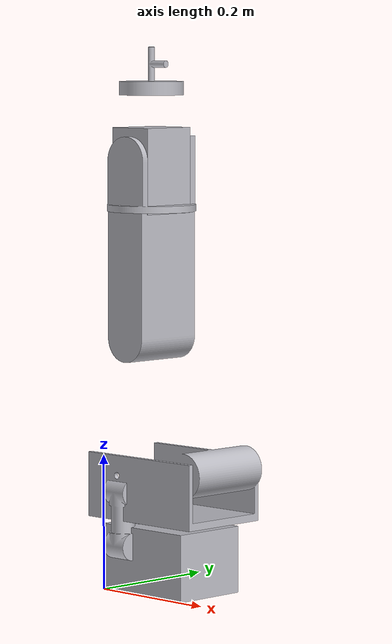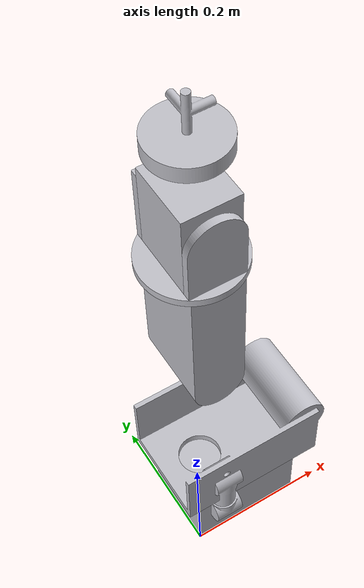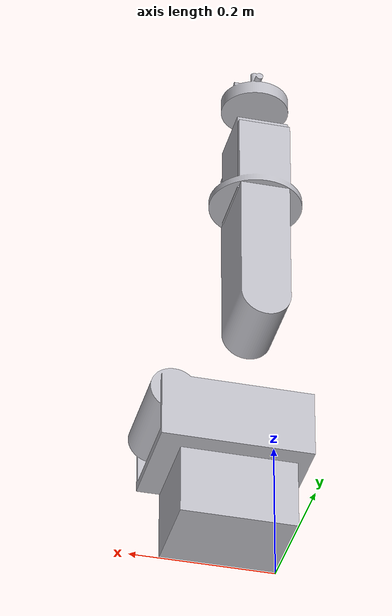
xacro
<?xml version="1.0"?>
<robot xmlns:xacro="http://www.ros.org/wiki/xacro" name="URDF">
    <xacro:arg name="initial_positions_file" default="initial_positions.yaml" />

    <!-- Import URDF urdf file -->
    <xacro:include filename="$(find six_dof)/urdf/URDF.xacro" />

    <!-- Import control_xacro -->
    <xacro:include filename="URDF.ros2_control.xacro" />

    <xacro:URDF_ros2_control name="FakeSystem" initial_positions_file="$(arg initial_positions_file)"/>

</robot>

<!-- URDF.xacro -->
<robot name="URDF" xmlns:xacro="http://www.ros.org/wiki/xacro">

<link name="world"/>

  <joint name="world_fixed_joint" type="fixed">
    <parent link="world"/>
    <child link="base_link"/>
  </joint>

<xacro:include filename="$(find six_dof)/urdf/materials.xacro" />
<xacro:include filename="$(find six_dof)/urdf/URDF.trans" />
<xacro:include filename="$(find six_dof)/urdf/URDF.gazebo" />

<link name="base_link">
  <inertial>
    <origin xyz="0.07901405555218022 0.0600975 0.05010159170370789" rpy="0 0 0"/>
    <mass value="15.035180794978768"/>
    <inertia ixx="0.030531" iyy="0.044355" izz="0.049591" ixy="-0.0" iyz="0.0" ixz="0.000482"/>
  </inertial>
  <visual>
    <origin xyz="0 0 0" rpy="0 0 0"/>
    <geometry>
      <mesh filename="package://six_dof/meshes/base_link.stl" scale="0.001 0.001 0.001"/>
    </geometry>
    <material name="silver"/>
  </visual>
  <collision>
    <origin xyz="0 0 0" rpy="0 0 0"/>
    <geometry>
      <mesh filename="package://six_dof/meshes/base_link.stl" scale="0.001 0.001 0.001"/>
    </geometry>
  </collision>
</link>

<link name="second_link_1">
  <inertial>
    <origin xyz="0.0838249114367144 3.9109956953969904e-05 0.04934459011597467" rpy="0 0 0"/>
    <mass value="7.693542380525855"/>
    <inertia ixx="0.02764" iyy="0.039205" izz="0.04824" ixy="2.5e-05" iyz="-5e-06" ixz="-0.007677"/>
  </inertial>
  <visual>
    <origin xyz="-0.039007 -0.060098 -0.1086" rpy="0 0 0"/>
    <geometry>
      <mesh filename="package://six_dof/meshes/second_link_1.stl" scale="0.001 0.001 0.001"/>
    </geometry>
    <material name="silver"/>
  </visual>
  <collision>
    <origin xyz="-0.039007 -0.060098 -0.1086" rpy="0 0 0"/>
    <geometry>
      <mesh filename="package://six_dof/meshes/second_link_1.stl" scale="0.001 0.001 0.001"/>
    </geometry>
  </collision>
</link>

<link name="third_link_1">
  <inertial>
    <origin xyz="6.885726072687615e-05 0.0650005 0.026866917148229447" rpy="0 0 0"/>
    <mass value="9.06233395752304"/>
    <inertia ixx="0.062086" iyy="0.049605" izz="0.024949" ixy="-0.0" iyz="0.0" ixz="-1.3e-05"/>
  </inertial>
  <visual>
    <origin xyz="-0.039199 0.004903 -0.1746" rpy="0 0 0"/>
    <geometry>
      <mesh filename="package://six_dof/meshes/third_link_1.stl" scale="0.001 0.001 0.001"/>
    </geometry>
    <material name="silver"/>
  </visual>
  <collision>
    <origin xyz="-0.039199 0.004903 -0.1746" rpy="0 0 0"/>
    <geometry>
      <mesh filename="package://six_dof/meshes/third_link_1.stl" scale="0.001 0.001 0.001"/>
    </geometry>
  </collision>
</link>

<link name="fourth_link_1">
  <inertial>
    <origin xyz="-3.469446951953614e-17 0.054999500000000034 0.07861193624106466" rpy="0 0 0"/>
    <mass value="12.843893719529557"/>
    <inertia ixx="0.061658" iyy="0.053782" izz="0.018026" ixy="0.0" iyz="0.0" ixz="0.0"/>
  </inertial>
  <visual>
    <origin xyz="-0.039199 -0.005098 -0.3746" rpy="0 0 0"/>
    <geometry>
      <mesh filename="package://six_dof/meshes/fourth_link_1.stl" scale="0.001 0.001 0.001"/>
    </geometry>
    <material name="silver"/>
  </visual>
  <collision>
    <origin xyz="-0.039199 -0.005098 -0.3746" rpy="0 0 0"/>
    <geometry>
      <mesh filename="package://six_dof/meshes/fourth_link_1.stl" scale="0.001 0.001 0.001"/>
    </geometry>
  </collision>
</link>

<link name="fifth_link_1">
  <inertial>
    <origin xyz="1.5265566588595902e-16 -4.999999999866223e-07 0.03379692584169203" rpy="0 0 0"/>
    <mass value="2.1999808629204853"/>
    <inertia ixx="0.006505" iyy="0.004259" izz="0.005507" ixy="0.0" iyz="0.0" ixz="-0.0"/>
  </inertial>
  <visual>
    <origin xyz="-0.039199 -0.060098 -0.5596" rpy="0 0 0"/>
    <geometry>
      <mesh filename="package://six_dof/meshes/fifth_link_1.stl" scale="0.001 0.001 0.001"/>
    </geometry>
    <material name="silver"/>
  </visual>
  <collision>
    <origin xyz="-0.039199 -0.060098 -0.5596" rpy="0 0 0"/>
    <geometry>
      <mesh filename="package://six_dof/meshes/fifth_link_1.stl" scale="0.001 0.001 0.001"/>
    </geometry>
  </collision>
</link>

<link name="sixth_link_1">
  <inertial>
    <origin xyz="1.8041124150158794e-16 0.04389135984099561 1.1102230246251565e-16" rpy="0 0 0"/>
    <mass value="6.343316113849922"/>
    <inertia ixx="0.012395" iyy="0.011167" izz="0.006919" ixy="0.0" iyz="0.0" ixz="0.0"/>
  </inertial>
  <visual>
    <origin xyz="-0.039199 -0.016206 -0.6196" rpy="0 0 0"/>
    <geometry>
      <mesh filename="package://six_dof/meshes/sixth_link_1.stl" scale="0.001 0.001 0.001"/>
    </geometry>
    <material name="silver"/>
  </visual>
  <collision>
    <origin xyz="-0.039199 -0.016206 -0.6196" rpy="0 0 0"/>
    <geometry>
      <mesh filename="package://six_dof/meshes/sixth_link_1.stl" scale="0.001 0.001 0.001"/>
    </geometry>
  </collision>
</link>

<link name="seventh_link_1">
  <inertial>
    <origin xyz="0.00023086583236890668 0.00023122567335883554 0.011861119443778878" rpy="0 0 0"/>
    <mass value="1.174052381754155"/>
    <inertia ixx="0.000748" iyy="0.000748" izz="0.001264" ixy="0.0" iyz="-9e-06" ixz="-9e-06"/>
  </inertial>
  <visual>
    <origin xyz="-0.039199 -0.060097 -0.682334" rpy="0 0 0"/>
    <geometry>
      <mesh filename="package://six_dof/meshes/seventh_link_1.stl" scale="0.001 0.001 0.001"/>
    </geometry>
    <material name="silver"/>
  </visual>
  <collision>
    <origin xyz="-0.039199 -0.060097 -0.682334" rpy="0 0 0"/>
    <geometry>
      <mesh filename="package://six_dof/meshes/seventh_link_1.stl" scale="0.001 0.001 0.001"/>
    </geometry>
  </collision>
</link>

<joint name="Revolute 7" type="revolute">
  <origin xyz="0.039007 0.060098 0.1086" rpy="0 0 0"/>
  <parent link="base_link"/>
  <child link="second_link_1"/>
  <axis xyz="0.0 0.0 1.0"/>
  <limit upper="2.879793" lower="-2.879793" effort="100.0" velocity="100.0"/>
</joint>

<joint name="Revolute 8" type="revolute">
  <origin xyz="0.000192 -0.065001 0.066" rpy="0 0 0"/>
  <parent link="second_link_1"/>
  <child link="third_link_1"/>
  <axis xyz="0.0 -1.0 0.0"/>
  <limit upper="1.308997" lower="-0.785398" effort="100.0" velocity="100.0"/>
</joint>

<joint name="Revolute 10" type="revolute">
  <origin xyz="0.0 0.010001 0.2" rpy="0 0 0"/>
  <parent link="third_link_1"/>
  <child link="fourth_link_1"/>
  <axis xyz="0.0 1.0 0.0"/>
  <limit upper="2.268928" lower="-2.268928" effort="100.0" velocity="100.0"/>
</joint>

<joint name="Revolute 11" type="continuous">
  <origin xyz="0.0 0.055 0.185" rpy="0 0 0"/>
  <parent link="fourth_link_1"/>
  <child link="fifth_link_1"/>
  <axis xyz="0.0 0.0 1.0"/>
  <limit effort="100.0" velocity="100.0"/> </joint>

<joint name="Revolute 12" type="continuous">
  <origin xyz="0.0 -0.043892 0.06" rpy="0 0 0"/>
  <parent link="fifth_link_1"/>
  <child link="sixth_link_1"/>
  <axis xyz="0.0 1.0 0.0"/>
  <limit effort="100.0" velocity="100.0"/> </joint>

<joint name="Revolute 13" type="continuous">
  <origin xyz="0.0 0.043891 0.062734" rpy="0 0 0"/>
  <parent link="sixth_link_1"/>
  <child link="seventh_link_1"/>
  <axis xyz="0.0 0.0 1.0"/>
  <limit effort="100.0" velocity="100.0"/> </joint>

</robot>

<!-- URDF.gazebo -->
<robot name="URDF" xmlns:xacro="http://www.ros.org/wiki/xacro" >

<xacro:property name="body_color" value="Gazebo/Silver" />

<gazebo>
  <plugin name="control" filename="libgazebo_ros_control.so"/>
</gazebo>
<gazebo reference="base_link">
  <material>${body_color}</material>
  <mu1>0.2</mu1>
  <mu2>0.2</mu2>
  <self_collide>true</self_collide>
  <gravity>true</gravity>
</gazebo>

</robot>
